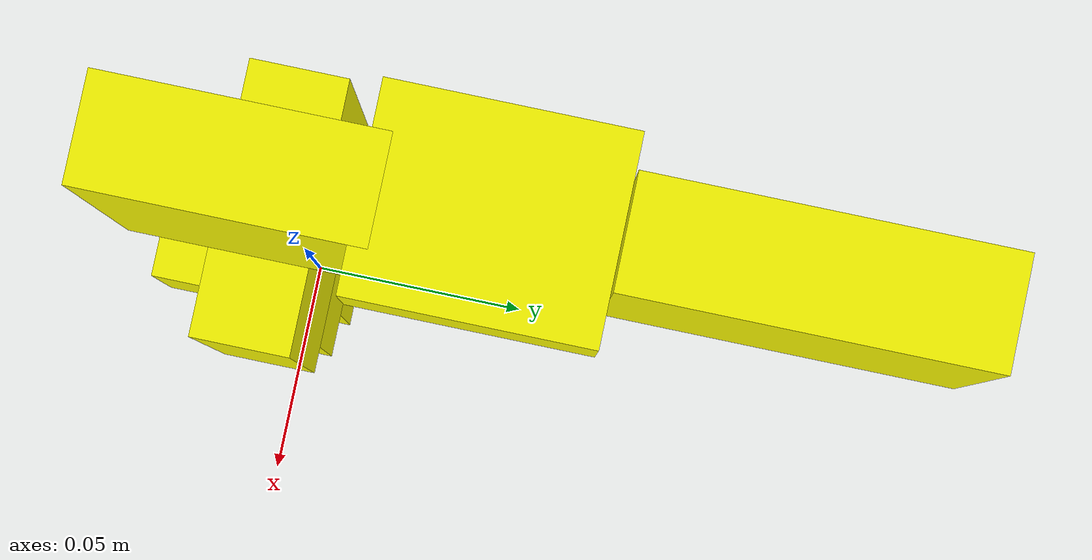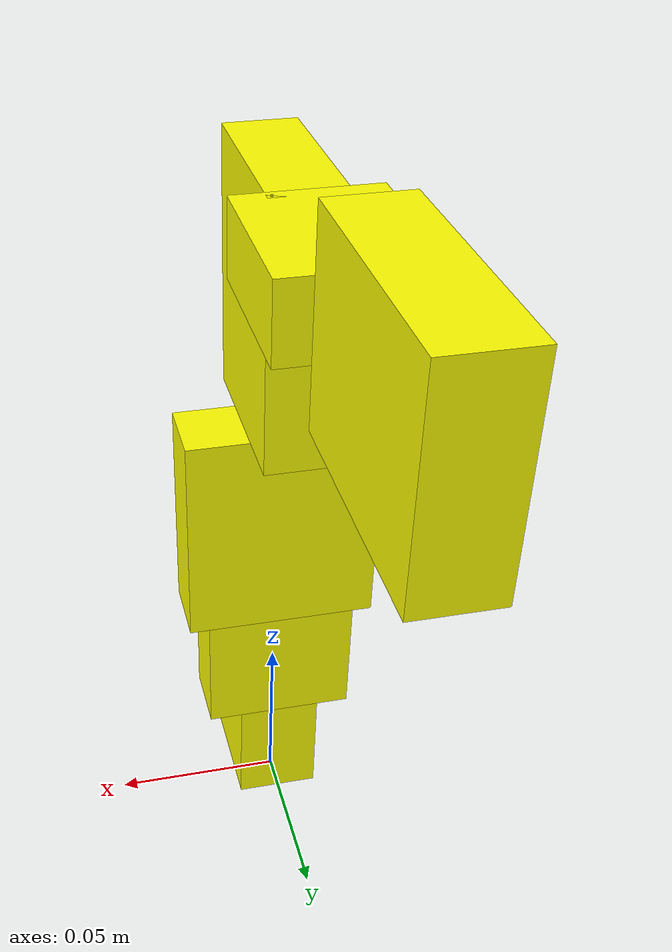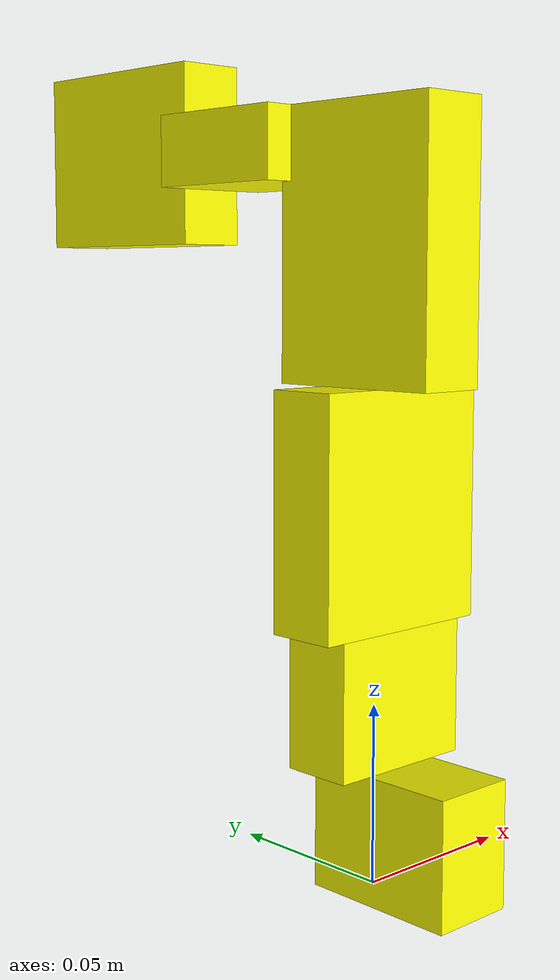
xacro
<?xml version="1.0"?>
<robot xmlns:xacro="http://ros.org/wiki/xacro" name="base">
    <xacro:arg name="use_sim" default="false" />
    <xacro:arg name="use_mock_hardware" default="false" />

    <xacro:macro name="box_inertial" params="mass x y z">
        <inertial>
            <origin xyz="0 0 0" rpy="0 0 0" />
            <mass value="${mass}" />
            <inertia
                ixx="${mass * (y * y + z * z) / 12.0}"
                ixy="0.0"
                ixz="0.0"
                iyy="${mass * (x * x + z * z) / 12.0}"
                iyz="0.0"
                izz="${mass * (x * x + y * y) / 12.0}" />
        </inertial>
    </xacro:macro>

    <xacro:macro name="tiny_inertial" params="mass:=0.005">
        <inertial>
            <origin xyz="0 0 0" rpy="0 0 0" />
            <mass value="${mass}" />
            <inertia ixx="1e-6" ixy="0.0" ixz="0.0" iyy="1e-6" iyz="0.0" izz="1e-6" />
        </inertial>
    </xacro:macro>

    <xacro:property name="joint_connect_radius" value="0.01" />
    <xacro:property name="max_effort" value="2.45" />
    <xacro:property name="max_velocity" value="4.72" />

    <xacro:property name="servo_0_length" value="0.04522" />
    <xacro:property name="servo_0_width" value="0.02472" />
    <xacro:property name="servo_0_height" value="0.0350" />
    <xacro:property name="servo_0_mass" value="0.05" />
    <xacro:property name="servo_0_min_pos" value="-${pi/4}" />
    <xacro:property name="servo_0_max_pos" value="${pi/4}" />

    <xacro:property name="servo_1_length" value="0.0442" />
    <xacro:property name="servo_1_width" value="0.020" />
    <xacro:property name="servo_1_height" value="0.03715" />
    <xacro:property name="servo_1_mass" value="0.05" />
    <xacro:property name="servo_1_min_pos" value="-${pi/4}" />
    <xacro:property name="servo_1_max_pos" value="${0}" />

    <xacro:property name="servo_2_length" value="0.0556" />
    <xacro:property name="servo_2_width" value="0.020" />
    <xacro:property name="servo_2_height" value="0.064" />
    <xacro:property name="servo_2_mass" value="0.08" />
    <xacro:property name="servo_2_min_pos" value="-${pi/4}" />
    <xacro:property name="servo_2_max_pos" value="${0}" />

    <xacro:property name="servo_3_length" value="0.0516" />
    <xacro:property name="servo_3_width" value="0.020" />
    <xacro:property name="servo_3_height" value="${joint_connect_radius + 0.064}" />
    <xacro:property name="servo_3_mass" value="0.08" />
    <xacro:property name="servo_3_min_pos" value="-${pi}" />
    <xacro:property name="servo_3_max_pos" value="${pi}" />

    <xacro:property name="servo_4_length" value="0.0442" />
    <xacro:property name="servo_4_width" value="0.020" />
    <xacro:property name="servo_4_height" value="0.03715" />
    <xacro:property name="servo_4_mass" value="0.05" />
    <xacro:property name="servo_4_min_pos" value="-${pi/2}" />
    <xacro:property name="servo_4_max_pos" value="${pi/2}" />

    <xacro:property name="servo_5_length" value="0.0516" />
    <xacro:property name="servo_5_width" value="0.020" />
    <xacro:property name="servo_5_height" value="0.064" />
    <xacro:property name="servo_5_mass" value="0.08" />
    <xacro:property name="servo_5_min_pos" value="-${pi}" />
    <xacro:property name="servo_5_max_pos" value="${pi}" />

    <material name="material_color">
        <color rgba="1 1 0 1" />
    </material>

    <link name="world" />
    <link name="base_footprint" />

    <joint name="world_to_base" type="fixed">
        <parent link="world" />
        <child link="base_footprint" />
        <origin xyz="0 0 0" rpy="0 0 0" />
    </joint>

    <!-- servo0_link -->
    <link name="servo0_link">
        <xacro:box_inertial mass="${servo_0_mass}" x="${servo_0_length}" y="${servo_0_width}"
            z="${servo_0_height}" />
        <visual>
            <origin xyz="0 0 0" rpy="0 0 -${pi/2}" />
            <geometry>
                <box size="${servo_0_length} ${servo_0_width} ${servo_0_height}" />
            </geometry>
            <material name="material_color" />
        </visual>

        <collision>
            <origin xyz="0 0 0" rpy="0 0 -${pi/2}" />
            <geometry>
                <box size="${servo_0_length} ${servo_0_width} ${servo_0_height}" />
            </geometry>
        </collision>
    </link>

    <joint name="servo0_fixed_joint" type="fixed">
        <origin xyz="0 -${servo_0_length / 2 - joint_connect_radius} ${servo_0_height / 2}"
            rpy="0 0 0" />
        <parent link="base_footprint" />
        <child link="servo0_link" />
    </joint>

    <!-- joint0_link 虚拟轴 -->
    <link name="joint0_link">
        <xacro:tiny_inertial />
    </link>

    <!-- 旋转关节 joint0 -->
    <joint name="joint0" type="revolute">
        <origin xyz="0 ${servo_0_length / 2 - joint_connect_radius} ${servo_0_height / 2}"
            rpy="0 0 0" />
        <parent link="servo0_link" />
        <child link="joint0_link" />
        <axis xyz="0 0 1" />
        <limit lower="${servo_0_min_pos}" upper="${servo_0_max_pos}" effort="${max_effort}"
            velocity="${max_velocity}" />
    </joint>

    <!-- servo1_link -->
    <link name="servo1_link">
        <xacro:box_inertial mass="${servo_1_mass}" x="${servo_1_length}" y="${servo_1_width}"
            z="${servo_1_height}" />
        <visual>
            <origin xyz="0 0 0" rpy="0 0 0" />
            <geometry>
                <box size="${servo_1_length} ${servo_1_width} ${servo_1_height}" />
            </geometry>
            <material name="material_color" />
        </visual>

        <collision>
            <origin xyz="0 0 0" rpy="0 0 0" />
            <geometry>
                <box size="${servo_1_length} ${servo_1_width} ${servo_1_height}" />
            </geometry>
        </collision>
    </link>

    <!-- 固定偏移：从 joint0_link 到 servo1_link -->
    <joint name="servo1_offset" type="fixed">
        <origin xyz="0 0 ${servo_1_height / 2}" rpy="0 0 0" />
        <parent link="joint0_link" />
        <child link="servo1_link" />
    </joint>

    <!-- joint1_link 虚拟轴 -->
    <link name="joint1_link">
        <xacro:tiny_inertial />
    </link>

    <!-- 旋转关节 joint1 -->
    <joint name="joint1" type="revolute">
        <origin xyz="0 0 ${servo_1_height / 2}" rpy="0 0 0" />
        <parent link="servo1_link" />
        <child link="joint1_link" />
        <axis xyz="1 0 0" />
        <limit lower="${servo_1_min_pos}" upper="${servo_1_max_pos}" effort="${max_effort}"
            velocity="${max_velocity}" />
    </joint>

    <!-- servo2_link -->
    <link name="servo2_link">
        <xacro:box_inertial mass="${servo_2_mass}" x="${servo_2_length}" y="${servo_2_width}"
            z="${servo_2_height}" />
        <visual>
            <origin xyz="0 0 0" rpy="0 0 0" />
            <geometry>
                <box size="${servo_2_length} ${servo_2_width} ${servo_2_height}" />
            </geometry>
            <material name="material_color" />
        </visual>

        <collision>
            <origin xyz="0 0 0" rpy="0 0 0" />
            <geometry>
                <box size="${servo_2_length} ${servo_2_width} ${servo_2_height}" />
            </geometry>
        </collision>
    </link>

    <!-- 固定偏移：从 joint1_link 到 servo2_link -->
    <joint name="servo2_offset" type="fixed">
        <origin xyz="0 0 ${servo_2_height / 2}" rpy="0 0 0" />
        <parent link="joint1_link" />
        <child link="servo2_link" />
    </joint>

    <!-- joint2_link 虚拟轴 -->
    <link name="joint2_link">
        <xacro:tiny_inertial />
    </link>

    <!-- 旋转关节 joint2 -->
    <joint name="joint2" type="revolute">
        <origin xyz="0 0 ${servo_2_height / 2}" rpy="0 0 0" />
        <parent link="servo2_link" />
        <child link="joint2_link" />
        <axis xyz="1 0 0" />
        <limit lower="${servo_2_min_pos}" upper="${servo_2_max_pos}" effort="${max_effort}"
            velocity="${max_velocity}" />
    </joint>

    <!-- servo3_link -->
    <link name="servo3_link">
        <xacro:box_inertial mass="${servo_3_mass}" x="${servo_3_length}" y="${servo_3_width}"
            z="${servo_3_height}" />
        <visual>
            <origin xyz="0 0 0" rpy="0 0 ${pi/2}" />
            <geometry>
                <box size="${servo_3_length} ${servo_3_width} ${servo_3_height}" />
            </geometry>
            <material name="material_color" />
        </visual>

        <collision>
            <origin xyz="0 0 0" rpy="0 0 ${pi/2}" />
            <geometry>
                <box size="${servo_3_length} ${servo_3_width} ${servo_3_height}" />
            </geometry>
        </collision>
    </link>

    <!-- 固定偏移：从 joint2_link 到 servo3_link -->
    <joint name="servo3_offset" type="fixed">
        <origin xyz="0 0 ${servo_3_height / 2}" rpy="0 0 0" />
        <parent link="joint2_link" />
        <child link="servo3_link" />
    </joint>

    <!-- joint3_link 虚拟轴 -->
    <link name="joint3_link">
        <xacro:tiny_inertial />
    </link>

    <!-- 旋转关节 joint3 -->
    <joint name="joint3" type="revolute">
        <origin xyz="0 ${servo_3_length / 2} ${servo_3_height / 2 - joint_connect_radius}"
            rpy="0 0 0" />
        <parent link="servo3_link" />
        <child link="joint3_link" />
        <axis xyz="0 1 0" />
        <limit lower="${servo_3_min_pos}" upper="${servo_3_max_pos}" effort="${max_effort}"
            velocity="${max_velocity}" />
    </joint>

    <!-- servo4_link -->
    <link name="servo4_link">
        <xacro:box_inertial mass="${servo_4_mass}" x="${servo_4_length}" y="${servo_4_width}"
            z="${servo_4_height}" />
        <visual>
            <origin xyz="0 0 0" rpy="0 0 ${pi/2}" />
            <geometry>
                <box size="${servo_4_length} ${servo_4_width} ${servo_4_height}" />
            </geometry>
            <material name="material_color" />
        </visual>

        <collision>
            <origin xyz="0 0 0" rpy="0 0 ${pi/2}" />
            <geometry>
                <box size="${servo_4_length} ${servo_4_width} ${servo_4_height}" />
            </geometry>
        </collision>
    </link>

    <!-- 固定偏移：从 joint3_link 到 servo4_link -->
    <joint name="servo4_offset" type="fixed">
        <origin xyz="0 ${servo_4_height / 2} 0" rpy="0 ${pi/2} 0" />
        <parent link="joint3_link" />
        <child link="servo4_link" />
    </joint>

    <!-- joint4_link 虚拟轴 -->
    <link name="joint4_link">
        <xacro:tiny_inertial />
    </link>

    <!-- 旋转关节 joint4 -->
    <joint name="joint4" type="revolute">
        <origin xyz="0 ${servo_4_length / 2} 0" rpy="0 0 0" />
        <parent link="servo4_link" />
        <child link="joint4_link" />
        <axis xyz="0 0 1" />
        <limit lower="${servo_4_min_pos}" upper="${servo_4_max_pos}" effort="${max_effort}"
            velocity="${max_velocity}" />
    </joint>

    <!-- servo5_link -->
    <link name="servo5_link">
        <xacro:box_inertial mass="${servo_5_mass}" x="${servo_5_length}" y="${servo_5_width}"
            z="${servo_5_height}" />
        <visual>
            <origin xyz="0 0 0" rpy="${pi/2} 0 0" />
            <geometry>
                <box size="${servo_5_length} ${servo_5_width} ${servo_5_height}" />
            </geometry>
            <material name="material_color" />
        </visual>

        <collision>
            <origin xyz="0 0 0" rpy="${pi/2} 0 0" />
            <geometry>
                <box size="${servo_5_length} ${servo_5_width} ${servo_5_height}" />
            </geometry>
        </collision>
    </link>

    <!-- 固定偏移：从 joint4_link 到 servo5_link -->
    <joint name="servo5_offset" type="fixed">
        <origin xyz="0 ${servo_5_height / 2} 0" rpy="0 0 0" />
        <parent link="joint4_link" />
        <child link="servo5_link" />
    </joint>

    <!-- joint5_link 虚拟轴 -->
    <link name="joint5_link">
        <xacro:tiny_inertial />
    </link>

    <!-- 旋转关节 joint5 -->
    <joint name="joint5" type="revolute">
        <origin xyz="${servo_5_length / 2} ${servo_5_height / 2} 0" rpy="0 0 0" />
        <parent link="servo5_link" />
        <child link="joint5_link" />
        <axis xyz="1 0 0" />
        <limit lower="${servo_5_min_pos}" upper="${servo_5_max_pos}" effort="${max_effort}"
            velocity="${max_velocity}" />
    </joint>

    <xacro:include filename="$(find arm_description)/urdf/ros2_control.xacro" />
    <xacro:arm_ros2_control
        name="SixAxisServoArm"
        use_sim="$(arg use_sim)"
        use_mock_hardware="$(arg use_mock_hardware)" />

    <xacro:if value="$(arg use_sim)">
        <!-- 仿真时禁用重力，避免控制器激活前机械臂倒塌 -->
        <gazebo reference="servo0_link">
            <gravity>false</gravity>
        </gazebo>
        <gazebo reference="joint0_link">
            <gravity>false</gravity>
        </gazebo>
        <gazebo reference="servo1_link">
            <gravity>false</gravity>
        </gazebo>
        <gazebo reference="joint1_link">
            <gravity>false</gravity>
        </gazebo>
        <gazebo reference="servo2_link">
            <gravity>false</gravity>
        </gazebo>
        <gazebo reference="joint2_link">
            <gravity>false</gravity>
        </gazebo>
        <gazebo reference="servo3_link">
            <gravity>false</gravity>
        </gazebo>
        <gazebo reference="joint3_link">
            <gravity>false</gravity>
        </gazebo>
        <gazebo reference="servo4_link">
            <gravity>false</gravity>
        </gazebo>
        <gazebo reference="joint4_link">
            <gravity>false</gravity>
        </gazebo>
        <gazebo reference="servo5_link">
            <gravity>false</gravity>
        </gazebo>
        <gazebo reference="joint5_link">
            <gravity>false</gravity>
        </gazebo>
        <gazebo>
            <plugin filename="libgz_ros2_control-system.so"
                name="gz_ros2_control::GazeboSimROS2ControlPlugin">
                <parameters>$(find arm_description)/config/arm_controllers_sim.yaml</parameters>
            </plugin>
        </gazebo>
    </xacro:if>

</robot>
